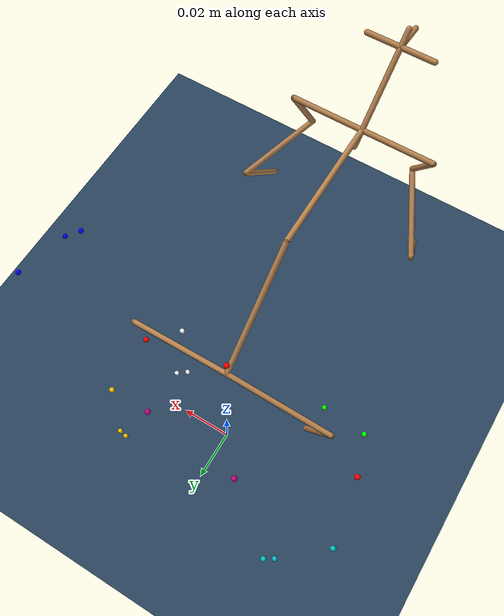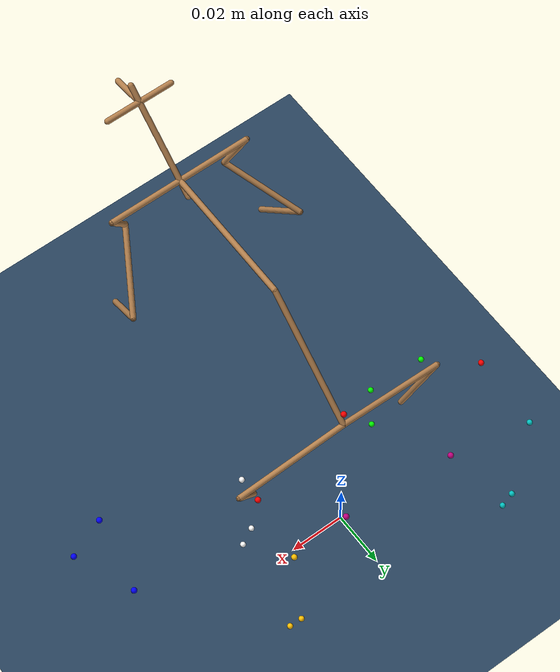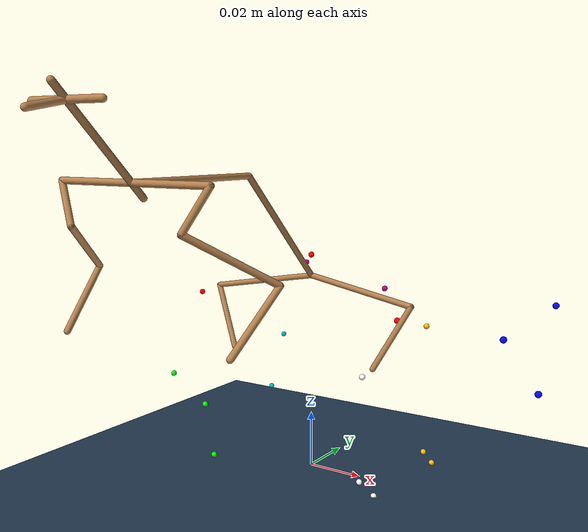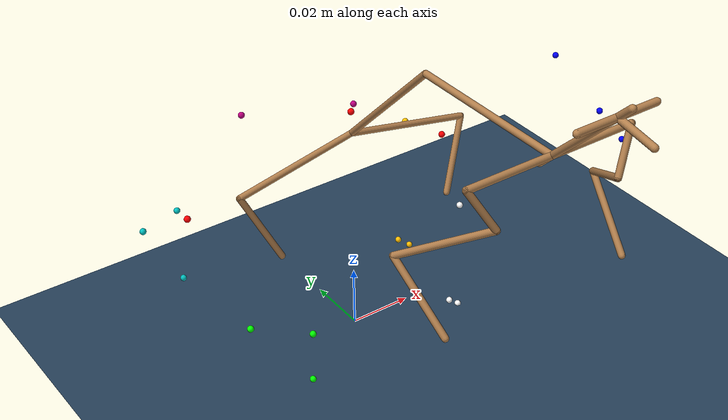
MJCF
<mujoco model="simple_rodent">
  <include file="./common/skybox.xml"/>
  <include file="./common/visual.xml"/>
  <include file="./common/materials.xml"/>

  <compiler angle="degree"/>

  <visual>
    <global offheight='1000' offwidth='1000'/>
  </visual>

  <default>
    <joint type="hinge" limited="true" solimplimit="0 0.99 0.01" stiffness="0.1" armature=".1e-3" damping=".01" range="-180 180"/>
    <geom size="0.03 .01 0" conaffinity="1" condim="3" friction="0.7 0.005 0.0001" solref="0.015 1" solimp="0.99 0.99 0.003"/>
    <general ctrllimited="true" ctrlrange="-1 1"/>
    <default class="rodent">
      <geom type="capsule" material="self" group="2" size=".001 .001"/>
    </default>
  </default>

  <contact>
    <exclude body1="HeadF" body2="root"/>
    <exclude body1="HeadL" body2="root"/>
    <exclude body1="HeadB" body2="root"/>
    <exclude body1="SpineF" body2="root"/>
    <exclude body1="SpineM" body2="root"/>
    <exclude body1="SpineL" body2="root"/>
    <exclude body1="Offset1" body2="root"/>
    <exclude body1="Offset2" body2="root"/>
    <exclude body1="HipL" body2="root"/>
    <exclude body1="HipR" body2="root"/>
    <exclude body1="ElbowL" body2="root"/>
    <exclude body1="ArmL" body2="root"/>
    <exclude body1="ShoulderL" body2="root"/>
    <exclude body1="ShoulderR" body2="root"/>
    <exclude body1="ElbowR" body2="root"/>
    <exclude body1="ArmR" body2="root"/>
    <exclude body1="KneeR" body2="root"/>
    <exclude body1="KneeL" body2="root"/>
    <exclude body1="ShinL" body2="root"/>
    <exclude body1="ShinR" body2="root"/>
  </contact>

  <equality>
		<distance geom1="HeadF" geom2="Skull1" solimp="1 5 0.005 0.1 1" solref="0.02 1"/>
    <distance geom1="HeadL" geom2="Skull2" solimp="1 5 0.005 0.1 1" solref="0.02 1"/>
    <distance geom1="HeadB" geom2="Skull3" solimp="1 5 0.005 0.1 1" solref="0.02 1"/>
    <distance geom1="SpineF" geom2="FSpine" solimp="1 5 0.005 0.1 1" solref="0.02 1"/>
    <distance geom1="SpineM" geom2="MSpine" solimp="1 5 0.005 0.1 1" solref="0.02 1"/>
    <distance geom1="SpineL" geom2="SpineR" solimp="1 5 0.005 0.1 1" solref="0.02 1"/>
    <distance geom1="HipL" geom2="LFemur" solimp="1 5 0.005 0.1 1" solref="0.02 1"/>
    <distance geom1="HipR" geom2="RFemur" solimp="1 5 0.005 0.1 1" solref="0.02 1"/>
    <distance geom1="ElbowL" geom2="LHumerus" solimp="1 5 0.005 0.1 1" solref="0.02 1"/>
    <distance geom1="ArmL" geom2="LArm" solimp="1 5 0.005 0.1 1" solref="0.02 1"/>
    <distance geom1="ShoulderL" geom2="LScap" solimp="1 5 0.005 0.1 1" solref="0.02 1"/>
    <distance geom1="ShoulderL" geom2="LScap_2" solimp="1 5 0.005 0.1 1" solref="0.02 1"/>
    <distance geom1="ShoulderR" geom2="RScap" solimp="1 5 0.005 0.1 1" solref="0.02 1"/>
    <distance geom1="ShoulderR" geom2="RScap_2" solimp="1 5 0.005 0.1 1" solref="0.02 1"/>
    <distance geom1="ElbowR" geom2="RHumerus" solimp="1 5 0.005 0.1 1" solref="0.02 1"/>
    <distance geom1="ArmR" geom2="RArm" solimp="1 5 0.005 0.1 1" solref="0.02 1"/>
    <distance geom1="KneeR" geom2="RFemur" solimp="1 5 0.005 0.1 1" solref="0.02 1"/>
    <distance geom1="KneeL" geom2="LFemur" solimp="1 5 0.005 0.1 1" solref="0.02 1"/>
    <distance geom1="ShinL" geom2="LShin" solimp="1 5 0.005 0.1 1" solref="0.02 1"/>
    <distance geom1="ShinR" geom2="RShin" solimp="1 5 0.005 0.1 1" solref="0.02 1"/>
	</equality>

  <worldbody>
    <light name="tracking_light" pos="0 0 7" dir="0 0 -1" mode="trackcom"/>
    <camera name="back" pos="0 3 1.4" xyaxes="-1 0 0 0 -1 2" mode="trackcom"/>
    <camera name="side" pos="-3 0 1.4" xyaxes="0 -1 0 1 0 2" mode="trackcom"/>
    <camera name="front_side" pos="-0.2 -0.25 0.15" xyaxes="0.5 -0.5 0 0.1 0.1 1"  mode="trackcom"/>
    <geom name="floor" type="plane" size="1 1 .1" material="grid"/>

    <body name="HeadF" mocap="true" pos="0.0889786541697217	-0.0230018299309882	0.0476424388885498">
      <geom name="HeadF" type="sphere" size="0.001" pos="0 0 0" contype="0" rgba="0 0 1 1"/>
    </body>
    <body name="HeadB" mocap="true" pos="0.0781558094744516	-0.0226266733980749	0.0615893306732178">
      <geom name="HeadB" type="sphere" size="0.001" pos="0 0 0" contype="0" rgba="0 0 1 1"/>
    </body>
    <body name="HeadL" mocap="true" pos="0.0840681829491366	0.00535135276388726	0.0672620410919189">
      <geom name="HeadL" type="sphere" size="0.001" pos="0 0 0" contype="0" rgba="0 0 1 1"/>
    </body>
    <body name="SpineF" mocap="true" pos="0.0336108354923585	-2.78810073398781e-09	0.0577284069061279">
      <geom name="SpineF" type="sphere" size="0.001" pos="0 0 0" contype="0" rgba="1 0 0 1"/>
    </body>
    <body name="SpineM" mocap="true" pos="0	0	0.0772419834136963">
      <geom name="SpineM" type="sphere" size="0.001" pos="0 0 0" contype="0" rgba="1 0 0 1"/>
    </body>
    <body name="SpineL" mocap="true" pos="-0.0530881705114818	0.00437902504728756	0.0583622074127197">
      <geom name="SpineL" type="sphere" size="0.001" pos="0 0 0" contype="0" rgba="1 0 0 1"/>
    </body>
    <body name="Offset1" mocap="true" pos="0.0166139193266304	0.0232478826248549	0.0634551258087158">
      <geom name="Offset1" type="sphere" size="0.001" pos="0 0 0" contype="0" rgba="0.75 0 0.5 1"/>
    </body>
    <body name="Offset2" mocap="true" pos="-0.0203860386158416	0.0284315698439373	0.0695728626251221">
      <geom name="Offset2" type="sphere" size="0.001" pos="0 0 0" contype="0" rgba="0.75 0 0.5 1"/>
    </body>
    <body name="HipL" mocap="true" pos="-0.0574960044850230	0.0256309102518966	0.0438745822906494">
      <geom name="HipL" type="sphere" size="0.001" pos="0 0 0" contype="0" rgba="0 0.75 0.75 1"/>
    </body>
    <body name="HipR" mocap="true" pos="-0.0481657994989117	-0.0189056833780880	0.0317840766906738">
      <geom name="HipR" type="sphere" size="0.001" pos="0 0 0" contype="0" rgba="0 1 0 1"/>
    </body>
    <body name="ElbowL" mocap="true" pos="0.0338847205799275	0.0229856683692743	0.00463577902317047">
      <geom name="ElbowL" type="sphere" size="0.001" pos="0 0 0" contype="0" rgba="1 0.75 0 1"/>
    </body>
    <body name="ArmL" mocap="true" pos="0.0377576429088255	0.0218747934639910	0.00164912891387939">
      <geom name="ArmL" type="sphere" size="0.001" pos="0 0 0" contype="0" rgba="1 0.75 0 1"/>
    </body>
    <body name="ShoulderL" mocap="true" pos="0.0347763772824717	0.0205949311575841	0.0521760311126709">
      <geom name="ShoulderL" type="sphere" size="0.001" pos="0 0 0" contype="0" rgba="1 0.75 0 1"/>
    </body>
    <body name="ShoulderR" mocap="true" pos="0.0292484607001552	-0.0152202585009388	0.0414274501800537">
      <geom name="ShoulderR" type="sphere" size="0.001" pos="0 0 0" contype="0" rgba="1 1 1 1"/>
    </body>
    <body name="ElbowR" mocap="true" pos="0.0276493569026909	-0.0134403114300899	0.00436700439453125">
      <geom name="ElbowR" type="sphere" size="0.001" pos="0 0 0" contype="0" rgba="1 1 1 1"/>
    </body>
    <body name="ArmR" mocap="true" pos="0.0323680084494787	-0.0119576342470901	0">
      <geom name="ArmR" type="sphere" size="0.001" pos="0 0 0" contype="0" rgba="1 1 1 1"/>
    </body>
    <body name="KneeR" mocap="true" pos="-0.0300852721940713	-0.0229741947020289	0.0240617675781250">
      <geom name="KneeR" type="sphere" size="0.001" pos="0 0 0" contype="0" rgba="0 1 0 1"/>
    </body>
    <body name="KneeL" mocap="true" pos="-0.0392087496326259	0.0396336424951963	0.0363965797424316">
      <geom name="KneeL" type="sphere" size="0.001" pos="0 0 0" contype="0" rgba="0 0.75 0.75 1"/>
    </body>
    <body name="ShinL" mocap="true" pos="-0.0418206697166656	0.0342867505675419	0.0147190299034119">
      <geom name="ShinL" type="sphere" size="0.001" pos="0 0 0" contype="0" rgba="0 0.75 0.75 1"/>
    </body>
    <body name="ShinR" mocap="true" pos="-0.0289246132551527	-0.0201304947966892	0.00437880039215087">
      <geom name="ShinR" type="sphere" size="0.001" pos="0 0 0" contype="0" rgba="0 1 0 1"/>
    </body>

    <body name="root" pos="0 0 70e-3" euler="135 90 0" childclass="rodent">
      <freejoint name="SpineR"/>
      <camera name="bodycam" pos="0 .3 .1" xyaxes="-1 0 0 0 1 0" fovy="80"/>
      <body name="SpineR">
        <body name="RFemur" pos="0 0 0" euler="-90 -30 10">
          <joint name="RFemur_rx" axis="1 0 0"/>
          <joint name="RFemur_ry" axis="0 1 0"/>
          <joint name="RFemur_rz" axis="0 0 1"/>
          <geom name="RFemur" size="1e-3 20e-3" pos="0 20e-3 0" euler="90 0 0"/>
          <body name="RShin" pos="0 40e-3 0" euler="10 0 -75">
            <joint name="RShin" axis="1 0 0"/>
            <geom name="RShin" pos="0 -12e-3 0" size=".001 12e-3" euler="90 0 0"/>
          </body>
        </body>
        <body name="LFemur" pos="0 0 0" euler="90 30 10">
          <joint name="LFemur_rx" axis="1 0 0"/>
          <joint name="LFemur_ry" axis="0 1 0"/>
          <joint name="LFemur_rz" axis="0 0 1"/>
          <geom name="LFemur" size="1e-3 20e-3" pos="0 20e-3 0" euler="90 0 0"/>
          <body name="LShin" pos="0 40e-3 0" euler="10 0 -75">
            <joint name="LShin"/>
            <geom name="LShin" pos="0 -12e-3 0" size=".001 12e-3" euler="90 0 0"/>
          </body>
        </body>
        <geom name="SpineR" size="1e-3 25e-3" pos="0 25e-3 0"  euler="90 0 0"/>
        <body name="MSpine" pos="0 50e-3 0" euler="-180 0 135">
          <joint name="MSpine"/>
          <geom name="MSpine" size="1e-3 25e-3" pos="0 25e-3 0"  euler="90 0 0"/>
          <body name="FSpine" pos="0 50e-3 0" euler="-90 -90 90">
            <joint name="FSpine_rx" axis="1 0 0"/>
            <joint name="FSpine_rz" axis="0 0 1"/>
            <geom name="FSpine" size="1e-3 20e-3" pos="0 -10e-3 10e-3"  euler="45 0 0"/>
            <body name="Skull1" pos="0 -20e-3 20e-3" euler="10 0 0">
              <joint name="Skull1"/>
              <geom name="Skull1" size=".001 6e-3" pos="0 -6e-3 0" euler="90 0 0"/>
            </body>
            <body name="Skull2" pos="0 -20e-3 20e-3" euler="180 0 90">
              <joint name="Skull2"/>
              <geom name="Skull2" size=".001 6e-3" pos="0 -6e-3 0" euler="90 0 0"/>
            </body>
            <body name="Skull3" pos="0 -20e-3 20e-3" euler="0 0 -90">
              <joint name="Skull3"/>
              <geom name="Skull3" size=".001 6e-3" pos="0 -6e-3 0" euler="90 0 0"/>
            </body>
          </body>
          <body name="LScap" pos="0 50e-3 0" euler="90 -30 -90">
            <joint name="LScap"/>
            <geom name="LScap" size=".001 13e-3" pos="13e-3 0 0" euler="90 90 0"/>
            <body name="LScap_2" pos="26e-3 0 0" euler="20 -60 70">
              <joint name="LScap_2"/>
              <geom name="LScap_2" size=".001 7e-3" pos="0 7e-3 0" euler="90 0 0"/>
              <body name="LHumerus" pos="0 14e-3 0" euler="0 20 -90">
                <joint name="LHumerus_rz" axis="0 0 1"/>
                <joint name="LHumerus_ry" axis="0 1 0"/>
                <joint name="LHumerus_rx" axis="1 0 0"/>
                <geom name="LHumerus" size=".001 15e-3" pos="0 15e-3 0" euler="90 0 0"/>
                <body name="LArm" pos="0 30e-3 0" euler="0 -30 -75">
                  <joint name="LArm"/>
                  <geom name="LArm" pos="0 -12e-3 0" size=".001 12e-3" euler="90 0 0"/>
                </body>
              </body>
            </body>
          </body>
          <body name="RScap" pos="0 50e-3 0" euler="-90 30 -90">
            <joint name="RScap"/>
            <geom name="RScap" size=".001 13e-3" pos="13e-3 0 0" euler="90 90 0"/>
            <body name="RScap_2" pos="26e-3 0 0" euler="-20 60 70">
              <joint name="RScap_2"/>
              <geom name="RScap_2" size=".001 7e-3" pos="0 7e-3 0" euler="90 0 0"/>
              <body name="RHumerus" pos="0 14e-3 0" euler="0 -20 -90">
                <joint name="RHumerus_rz" axis="0 0 1"/>
                <joint name="RHumerus_ry" axis="0 1 0"/>
                <joint name="RHumerus_rx" axis="1 0 0"/>
                <geom name="RHumerus" size=".001 15e-3" pos="0 15e-3 0" euler="90 0 0"/>
                <body name="RArm" pos="0 30e-3 0" euler="0 30 -75">
                  <joint name="RArm"/>
                  <geom name="RArm" pos="0 -12e-3 0" size=".001 12e-3" euler="90 0 0"/>
                </body>
              </body>
            </body>
          </body>
        </body>
      </body>
    </body>
  </worldbody>

  <actuator>
  </actuator>

  <sensor>
  </sensor>

</mujoco>

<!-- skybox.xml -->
<mujoco>
    <asset>
        <texture name="skybox" type="skybox" builtin="gradient" rgb1=".4 .6 .8" rgb2="0 0 0"
                 width="800" height="800" mark="random" markrgb="1 1 1"/>
    </asset>
  </mujoco>

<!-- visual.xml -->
<mujoco>
    <visual>
      <headlight ambient=".4 .4 .4" diffuse=".8 .8 .8" specular="0.1 0.1 0.1"/>
      <map znear=".01"/>
      <quality shadowsize="2048"/>
    </visual>
  </mujoco>

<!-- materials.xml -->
<!--
Common textures, colors and materials to be used throughout this suite. Some
materials such as xxx_highlight are activated on occurence of certain events,
for example receiving a positive reward.
-->
<mujoco>
    <asset>
      <texture name="grid" type="2d" builtin="checker" rgb1=".1 .2 .3" rgb2=".2 .3 .4" width="300" height="300" mark="edge" markrgb=".2 .3 .4"/>
      <material name="grid" texture="grid" texrepeat="1 1" texuniform="true" reflectance=".2"/>
      <material name="self" rgba=".7 .5 .3 1"/>
      <material name="self_default" rgba=".7 .5 .3 1"/>
      <material name="self_highlight" rgba="0 .5 .3 1"/>
      <material name="effector" rgba=".7 .4 .2 1"/>
      <material name="effector_default" rgba=".7 .4 .2 1"/>
      <material name="effector_highlight" rgba="0 .5 .3 1"/>
      <material name="decoration" rgba=".3 .5 .7 1"/>
      <material name="eye" rgba="0 .2 1 1"/>
      <material name="target" rgba=".6 .3 .3 1"/>
      <material name="target_default" rgba=".6 .3 .3 1"/>
      <material name="target_highlight" rgba=".6 .3 .3 .4"/>
      <material name="site" rgba=".5 .5 .5 .3"/>
    </asset>
  </mujoco>
